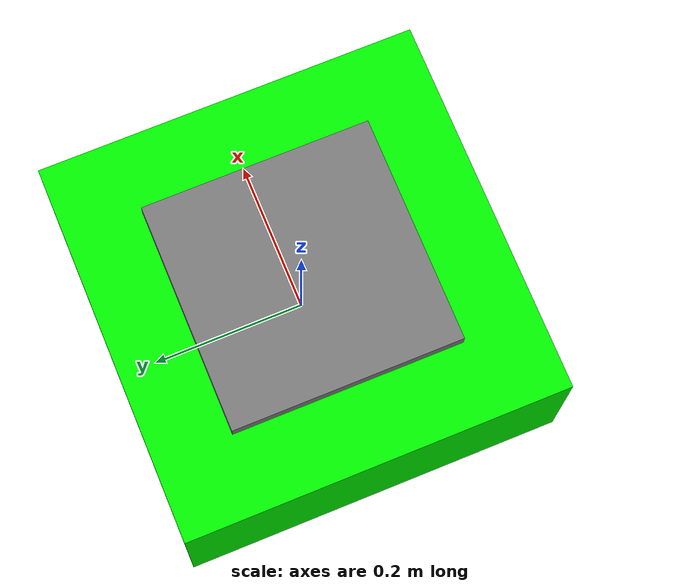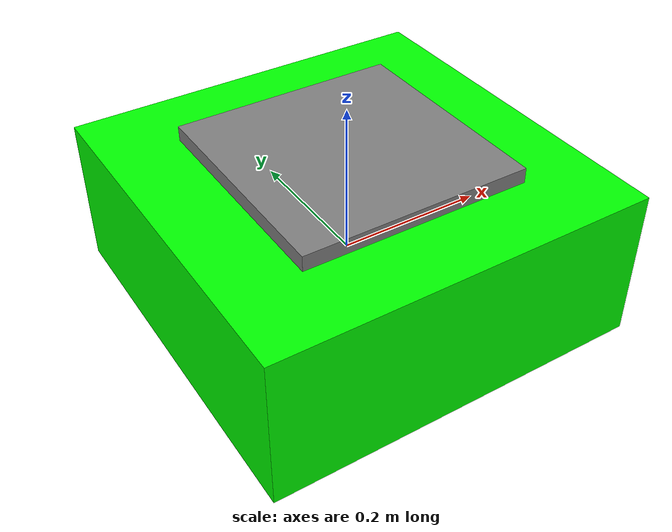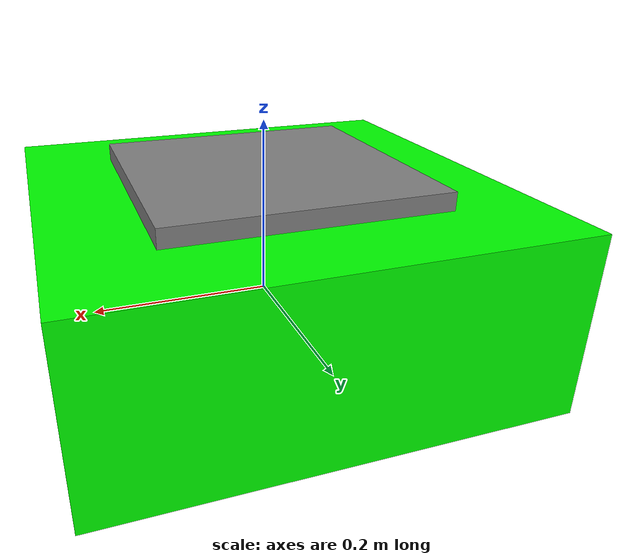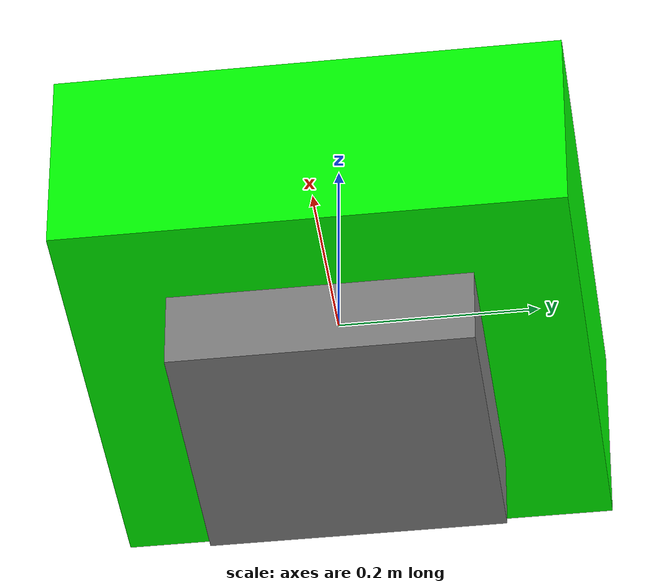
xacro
<?xml version="1.0"?>
<robot name="imu_robot" xmlns:xacro="http://ros.org/wiki/xacro">

  <link name="base_link">
  <visual>
    <origin xyz="0 0 0" rpy="0 0 0"/>
    <geometry>
       <box size="0.3 0.3 0.3"/>
    </geometry>
    <material name="gray">
     <color rgba="0.5 0.5 0.5 1"/>
    </material>
   </visual>
  </link>

  <joint name="base_to_imu" type="floating">
    <origin xyz="0 0 0.03" rpy="0 0 0"/>
    <parent link="base_link"/>
    <child link="imu_link"/>
  </joint>

  <link name="imu_link">
    <visual>
     <origin xyz="0 0 0" rpy="0 0 0"/>
      <geometry>
        <box size="0.5 0.5 0.2"/>  <!-- small cube -->
      </geometry>
      <material name="green">
        <color rgba="0 1 0 1"/>
      </material>
    </visual>
  </link>

</robot>
